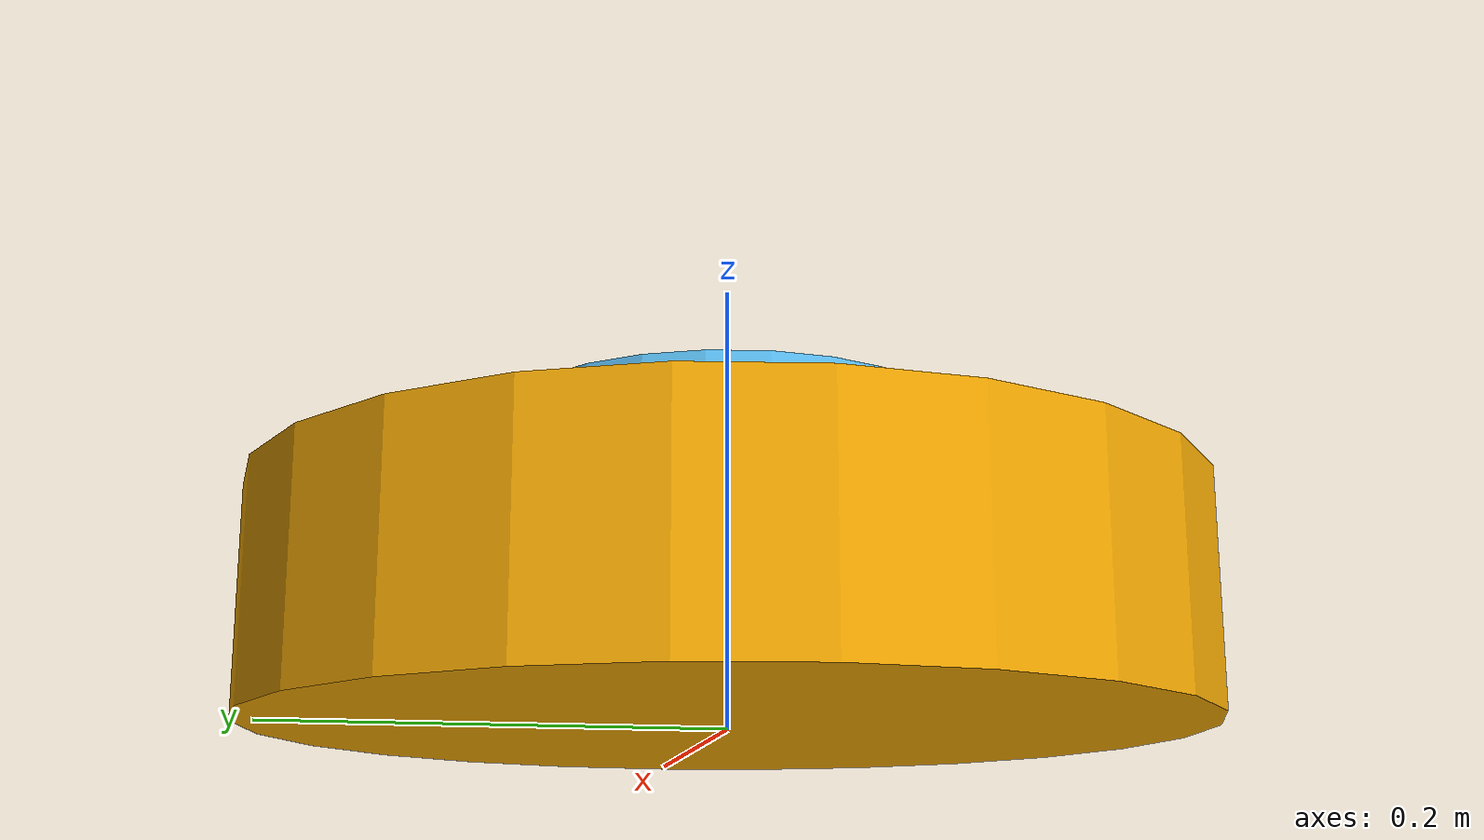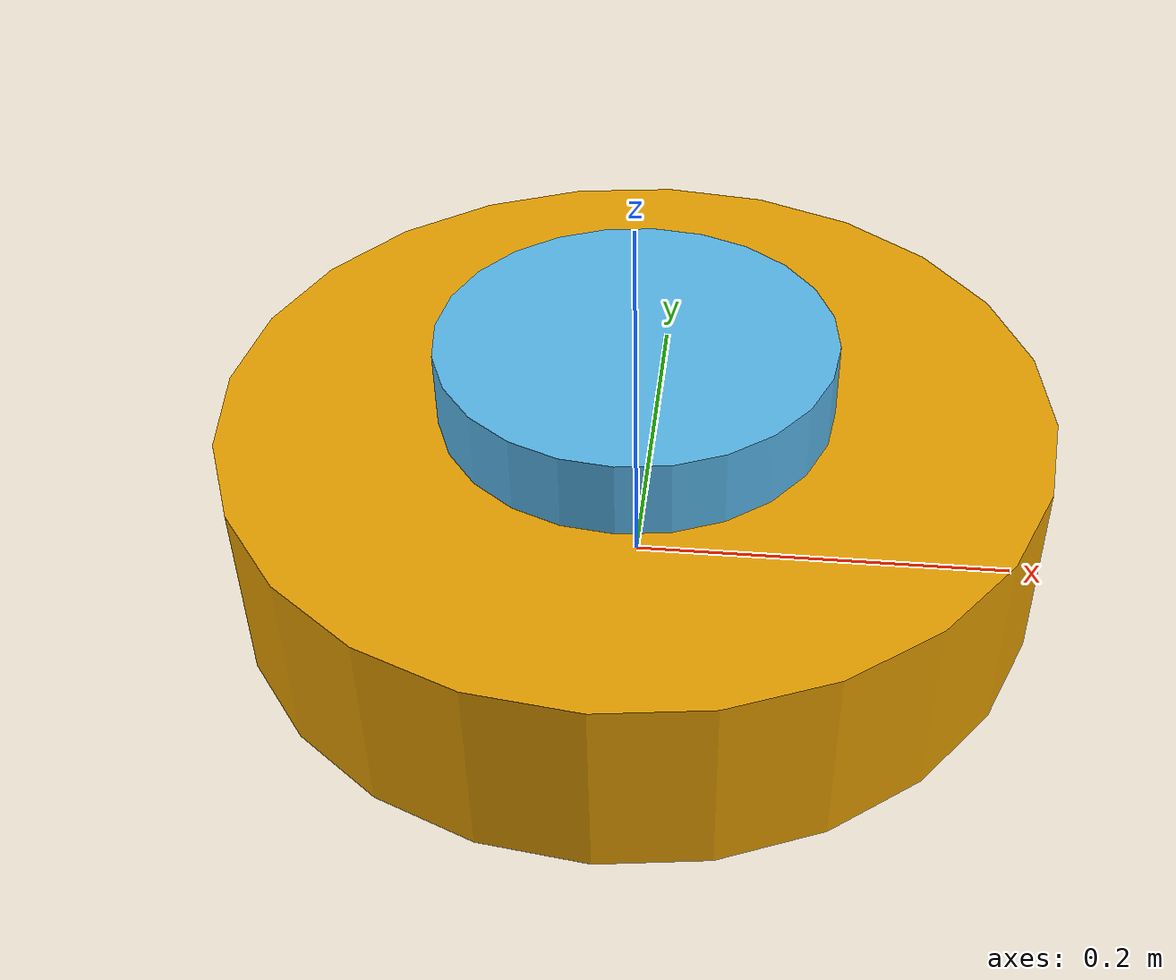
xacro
<?xml version="1.0" encoding="UTF-8" ?>
<robot name="mock_robot"
  xmlns:xacro="http://www.ros.org/wiki/xacro">

  <link name="base_link">
    <visual>
    <origin xyz="0 0 0.05"/>
      <geometry>
        <cylinder length="0.1" radius="0.21"/>
      </geometry>
    </visual>
  </link>

  <link name="electronic">
    <visual>
      <geometry>
        <cylinder length="0.08" radius="0.1"/>
      </geometry>
    </visual>
  </link>

  <joint name="electronic_to_base" type="fixed">
    <parent link="base_link"/>
    <child link="electronic"/>
    <origin xyz="0 0 0.1"/>
  </joint>

</robot>
